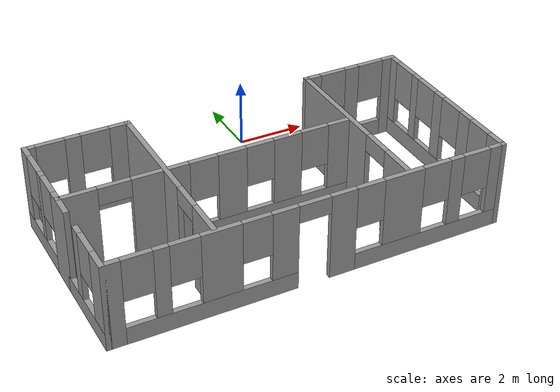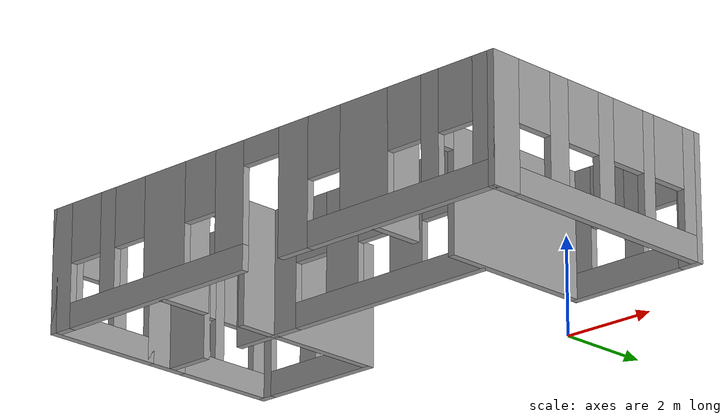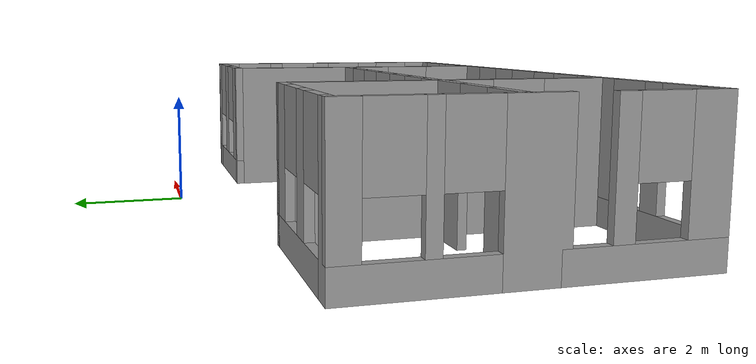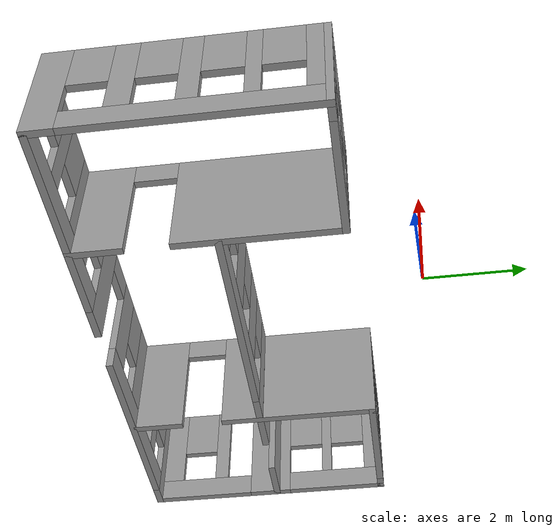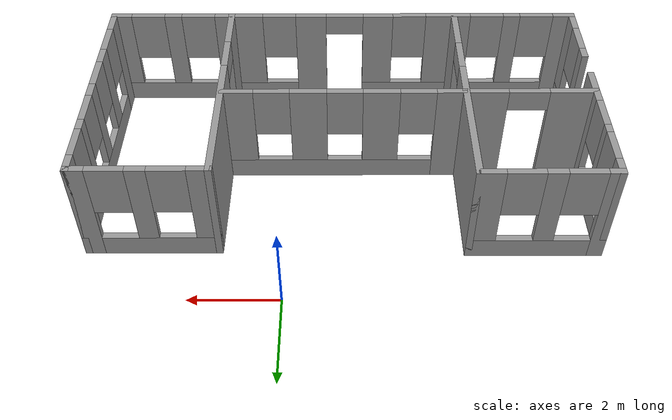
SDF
<?xml version='1.0'?>
<sdf version='1.6'>
  <model name='office_2'>
    <pose frame=''>-1.29 -3.995 0 0 -0 0</pose>
    <link name='Wall_0'>
      <pose frame=''>-5.55 1.175 0 0 -0 1.5708</pose>
      <visual name='Wall_0_Visual_0'>
        <pose frame=''>-1.13995 0 1.25 0 -0 0</pose>
        <geometry>
          <box>
            <size>0.970095 0.15 2.5</size>
          </box>
        </geometry>
        <material>
          <script>
            <uri>file://media/materials/scripts/gazebo.material</uri>
            <name>Gazebo/Grey</name>
          </script>
          <ambient>1 1 1 1</ambient>
        </material>
        <meta>
          <layer>0</layer>
        </meta>
      </visual>
      <collision name='Wall_0_Collision_0'>
        <geometry>
          <box>
            <size>0.970095 0.15 2.5</size>
          </box>
        </geometry>
        <pose frame=''>-1.13995 0 1.25 0 -0 0</pose>
      </collision>
      <visual name='Wall_0_Visual_1'>
        <pose frame=''>0.485048 0 0.25 0 -0 0</pose>
        <geometry>
          <box>
            <size>2.2799 0.15 0.5</size>
          </box>
        </geometry>
        <material>
          <script>
            <uri>file://media/materials/scripts/gazebo.material</uri>
            <name>Gazebo/Grey</name>
          </script>
          <ambient>1 1 1 1</ambient>
        </material>
        <meta>
          <layer>0</layer>
        </meta>
      </visual>
      <collision name='Wall_0_Collision_1'>
        <geometry>
          <box>
            <size>2.2799 0.15 0.5</size>
          </box>
        </geometry>
        <pose frame=''>0.485048 0 0.25 0 -0 0</pose>
      </collision>
      <visual name='Wall_0_Visual_2'>
        <pose frame=''>0.261163 0 1.5 0 -0 0</pose>
        <geometry>
          <box>
            <size>0.232136 0.15 2</size>
          </box>
        </geometry>
        <material>
          <script>
            <uri>file://media/materials/scripts/gazebo.material</uri>
            <name>Gazebo/Grey</name>
          </script>
          <ambient>1 1 1 1</ambient>
        </material>
        <meta>
          <layer>0</layer>
        </meta>
      </visual>
      <collision name='Wall_0_Collision_2'>
        <geometry>
          <box>
            <size>0.232136 0.15 2</size>
          </box>
        </geometry>
        <pose frame=''>0.261163 0 1.5 0 -0 0</pose>
      </collision>
      <visual name='Wall_0_Visual_3'>
        <pose frame=''>1.40112 0 1.5 0 -0 0</pose>
        <geometry>
          <box>
            <size>0.447769 0.15 2</size>
          </box>
        </geometry>
        <material>
          <script>
            <uri>file://media/materials/scripts/gazebo.material</uri>
            <name>Gazebo/Grey</name>
          </script>
          <ambient>1 1 1 1</ambient>
        </material>
        <meta>
          <layer>0</layer>
        </meta>
      </visual>
      <collision name='Wall_0_Collision_3'>
        <geometry>
          <box>
            <size>0.447769 0.15 2</size>
          </box>
        </geometry>
        <pose frame=''>1.40112 0 1.5 0 -0 0</pose>
      </collision>
      <visual name='Wall_0_Visual_4'>
        <pose frame=''>-0.254905 0 1.9 0 -0 0</pose>
        <geometry>
          <box>
            <size>0.8 0.15 1.2</size>
          </box>
        </geometry>
        <material>
          <script>
            <uri>file://media/materials/scripts/gazebo.material</uri>
            <name>Gazebo/Grey</name>
          </script>
          <ambient>1 1 1 1</ambient>
        </material>
        <meta>
          <layer>0</layer>
        </meta>
      </visual>
      <collision name='Wall_0_Collision_4'>
        <geometry>
          <box>
            <size>0.8 0.15 1.2</size>
          </box>
        </geometry>
        <pose frame=''>-0.254905 0 1.9 0 -0 0</pose>
      </collision>
      <visual name='Wall_0_Visual_5'>
        <pose frame=''>0.777231 0 1.9 0 -0 0</pose>
        <geometry>
          <box>
            <size>0.8 0.15 1.2</size>
          </box>
        </geometry>
        <material>
          <script>
            <uri>file://media/materials/scripts/gazebo.material</uri>
            <name>Gazebo/Grey</name>
          </script>
          <ambient>1 1 1 1</ambient>
        </material>
        <meta>
          <layer>0</layer>
        </meta>
      </visual>
      <collision name='Wall_0_Collision_5'>
        <geometry>
          <box>
            <size>0.8 0.15 1.2</size>
          </box>
        </geometry>
        <pose frame=''>0.777231 0 1.9 0 -0 0</pose>
      </collision>
    </link>
    <link name='Wall_13'>
      <pose frame=''>2.7 -0.05 0 0 0 -1.5708</pose>
      <visual name='Wall_13_Visual_0'>
        <pose frame=''>-1.03023 0 1.25 0 -0 0</pose>
        <geometry>
          <box>
            <size>3.43955 0.15 2.5</size>
          </box>
        </geometry>
        <material>
          <script>
            <uri>file://media/materials/scripts/gazebo.material</uri>
            <name>Gazebo/Grey</name>
          </script>
          <ambient>1 1 1 1</ambient>
        </material>
        <meta>
          <layer>0</layer>
        </meta>
      </visual>
      <collision name='Wall_13_Collision_0'>
        <geometry>
          <box>
            <size>3.43955 0.15 2.5</size>
          </box>
        </geometry>
        <pose frame=''>-1.03023 0 1.25 0 -0 0</pose>
      </collision>
      <visual name='Wall_13_Visual_1'>
        <pose frame=''>2.16977 0 1.25 0 -0 0</pose>
        <geometry>
          <box>
            <size>1.16045 0.15 2.5</size>
          </box>
        </geometry>
        <material>
          <script>
            <uri>file://media/materials/scripts/gazebo.material</uri>
            <name>Gazebo/Grey</name>
          </script>
          <ambient>1 1 1 1</ambient>
        </material>
        <meta>
          <layer>0</layer>
        </meta>
      </visual>
      <collision name='Wall_13_Collision_1'>
        <geometry>
          <box>
            <size>1.16045 0.15 2.5</size>
          </box>
        </geometry>
        <pose frame=''>2.16977 0 1.25 0 -0 0</pose>
      </collision>
      <visual name='Wall_13_Visual_2'>
        <pose frame=''>1.13955 0 2.25 0 -0 0</pose>
        <geometry>
          <box>
            <size>0.9 0.15 0.5</size>
          </box>
        </geometry>
        <material>
          <script>
            <uri>file://media/materials/scripts/gazebo.material</uri>
            <name>Gazebo/Grey</name>
          </script>
          <ambient>1 1 1 1</ambient>
        </material>
        <meta>
          <layer>0</layer>
        </meta>
      </visual>
      <collision name='Wall_13_Collision_2'>
        <geometry>
          <box>
            <size>0.9 0.15 0.5</size>
          </box>
        </geometry>
        <pose frame=''>1.13955 0 2.25 0 -0 0</pose>
      </collision>
    </link>
    <link name='Wall_15'>
      <pose frame=''>-4.125 2.725 0 0 -0 0</pose>
      <visual name='Wall_15_Visual_0'>
        <pose frame=''>-1.32788 0 1.25 0 -0 0</pose>
        <geometry>
          <box>
            <size>0.344242 0.15 2.5</size>
          </box>
        </geometry>
        <material>
          <script>
            <uri>file://media/materials/scripts/gazebo.material</uri>
            <name>Gazebo/Grey</name>
          </script>
          <ambient>1 1 1 1</ambient>
        </material>
        <meta>
          <layer>0</layer>
        </meta>
      </visual>
      <collision name='Wall_15_Collision_0'>
        <geometry>
          <box>
            <size>0.344242 0.15 2.5</size>
          </box>
        </geometry>
        <pose frame=''>-1.32788 0 1.25 0 -0 0</pose>
      </collision>
      <visual name='Wall_15_Visual_1'>
        <pose frame=''>0.172121 0 0.25 0 -0 0</pose>
        <geometry>
          <box>
            <size>2.65576 0.15 0.5</size>
          </box>
        </geometry>
        <material>
          <script>
            <uri>file://media/materials/scripts/gazebo.material</uri>
            <name>Gazebo/Grey</name>
          </script>
          <ambient>1 1 1 1</ambient>
        </material>
        <meta>
          <layer>0</layer>
        </meta>
      </visual>
      <collision name='Wall_15_Collision_1'>
        <geometry>
          <box>
            <size>2.65576 0.15 0.5</size>
          </box>
        </geometry>
        <pose frame=''>0.172121 0 0.25 0 -0 0</pose>
      </collision>
      <visual name='Wall_15_Visual_2'>
        <pose frame=''>-0.13761 0 1.5 0 -0 0</pose>
        <geometry>
          <box>
            <size>0.436295 0.15 2</size>
          </box>
        </geometry>
        <material>
          <script>
            <uri>file://media/materials/scripts/gazebo.material</uri>
            <name>Gazebo/Grey</name>
          </script>
          <ambient>1 1 1 1</ambient>
        </material>
        <meta>
          <layer>0</layer>
        </meta>
      </visual>
      <collision name='Wall_15_Collision_2'>
        <geometry>
          <box>
            <size>0.436295 0.15 2</size>
          </box>
        </geometry>
        <pose frame=''>-0.13761 0 1.5 0 -0 0</pose>
      </collision>
      <visual name='Wall_15_Visual_3'>
        <pose frame=''>1.19027 0 1.5 0 -0 0</pose>
        <geometry>
          <box>
            <size>0.619463 0.15 2</size>
          </box>
        </geometry>
        <material>
          <script>
            <uri>file://media/materials/scripts/gazebo.material</uri>
            <name>Gazebo/Grey</name>
          </script>
          <ambient>1 1 1 1</ambient>
        </material>
        <meta>
          <layer>0</layer>
        </meta>
      </visual>
      <collision name='Wall_15_Collision_3'>
        <geometry>
          <box>
            <size>0.619463 0.15 2</size>
          </box>
        </geometry>
        <pose frame=''>1.19027 0 1.5 0 -0 0</pose>
      </collision>
      <visual name='Wall_15_Visual_4'>
        <pose frame=''>-0.755758 0 1.9 0 -0 0</pose>
        <geometry>
          <box>
            <size>0.8 0.15 1.2</size>
          </box>
        </geometry>
        <material>
          <script>
            <uri>file://media/materials/scripts/gazebo.material</uri>
            <name>Gazebo/Grey</name>
          </script>
          <ambient>1 1 1 1</ambient>
        </material>
        <meta>
          <layer>0</layer>
        </meta>
      </visual>
      <collision name='Wall_15_Collision_4'>
        <geometry>
          <box>
            <size>0.8 0.15 1.2</size>
          </box>
        </geometry>
        <pose frame=''>-0.755758 0 1.9 0 -0 0</pose>
      </collision>
      <visual name='Wall_15_Visual_5'>
        <pose frame=''>0.480537 0 1.9 0 -0 0</pose>
        <geometry>
          <box>
            <size>0.8 0.15 1.2</size>
          </box>
        </geometry>
        <material>
          <script>
            <uri>file://media/materials/scripts/gazebo.material</uri>
            <name>Gazebo/Grey</name>
          </script>
          <ambient>1 1 1 1</ambient>
        </material>
        <meta>
          <layer>0</layer>
        </meta>
      </visual>
      <collision name='Wall_15_Collision_5'>
        <geometry>
          <box>
            <size>0.8 0.15 1.2</size>
          </box>
        </geometry>
        <pose frame=''>0.480537 0 1.9 0 -0 0</pose>
      </collision>
    </link>
    <link name='Wall_16'>
      <pose frame=''>-2.7 0.05 0 0 0 -1.5708</pose>
      <visual name='Wall_16_Visual_0'>
        <pose frame=''>-1.00858 0 1.25 0 -0 0</pose>
        <geometry>
          <box>
            <size>3.48284 0.15 2.5</size>
          </box>
        </geometry>
        <material>
          <script>
            <uri>file://media/materials/scripts/gazebo.material</uri>
            <name>Gazebo/Grey</name>
          </script>
          <ambient>1 1 1 1</ambient>
        </material>
        <meta>
          <layer>0</layer>
        </meta>
      </visual>
      <collision name='Wall_16_Collision_0'>
        <geometry>
          <box>
            <size>3.48284 0.15 2.5</size>
          </box>
        </geometry>
        <pose frame=''>-1.00858 0 1.25 0 -0 0</pose>
      </collision>
      <visual name='Wall_16_Visual_1'>
        <pose frame=''>2.19142 0 1.25 0 -0 0</pose>
        <geometry>
          <box>
            <size>1.11716 0.15 2.5</size>
          </box>
        </geometry>
        <material>
          <script>
            <uri>file://media/materials/scripts/gazebo.material</uri>
            <name>Gazebo/Grey</name>
          </script>
          <ambient>1 1 1 1</ambient>
        </material>
        <meta>
          <layer>0</layer>
        </meta>
      </visual>
      <collision name='Wall_16_Collision_1'>
        <geometry>
          <box>
            <size>1.11716 0.15 2.5</size>
          </box>
        </geometry>
        <pose frame=''>2.19142 0 1.25 0 -0 0</pose>
      </collision>
      <visual name='Wall_16_Visual_2'>
        <pose frame=''>1.18284 0 2.25 0 -0 0</pose>
        <geometry>
          <box>
            <size>0.9 0.15 0.5</size>
          </box>
        </geometry>
        <material>
          <script>
            <uri>file://media/materials/scripts/gazebo.material</uri>
            <name>Gazebo/Grey</name>
          </script>
          <ambient>1 1 1 1</ambient>
        </material>
        <meta>
          <layer>0</layer>
        </meta>
      </visual>
      <collision name='Wall_16_Collision_2'>
        <geometry>
          <box>
            <size>0.9 0.15 0.5</size>
          </box>
        </geometry>
        <pose frame=''>1.18284 0 2.25 0 -0 0</pose>
      </collision>
    </link>
    <link name='Wall_18'>
      <pose frame=''>-0.016722 0.194197 0 0 -0 0</pose>
      <visual name='Wall_18_Visual_0'>
        <pose frame=''>-2.39643 0 1.25 0 -0 0</pose>
        <geometry>
          <box>
            <size>0.707136 0.15 2.5</size>
          </box>
        </geometry>
        <material>
          <script>
            <uri>file://media/materials/scripts/gazebo.material</uri>
            <name>Gazebo/Grey</name>
          </script>
          <ambient>1 1 1 1</ambient>
        </material>
        <meta>
          <layer>0</layer>
        </meta>
      </visual>
      <collision name='Wall_18_Collision_0'>
        <geometry>
          <box>
            <size>0.707136 0.15 2.5</size>
          </box>
        </geometry>
        <pose frame=''>-2.39643 0 1.25 0 -0 0</pose>
      </collision>
      <visual name='Wall_18_Visual_1'>
        <pose frame=''>0.353568 0 0.25 0 -0 0</pose>
        <geometry>
          <box>
            <size>4.79286 0.15 0.5</size>
          </box>
        </geometry>
        <material>
          <script>
            <uri>file://media/materials/scripts/gazebo.material</uri>
            <name>Gazebo/Grey</name>
          </script>
          <ambient>1 1 1 1</ambient>
        </material>
        <meta>
          <layer>0</layer>
        </meta>
      </visual>
      <collision name='Wall_18_Collision_1'>
        <geometry>
          <box>
            <size>4.79286 0.15 0.5</size>
          </box>
        </geometry>
        <pose frame=''>0.353568 0 0.25 0 -0 0</pose>
      </collision>
      <visual name='Wall_18_Visual_2'>
        <pose frame=''>-0.8319 0 1.5 0 -0 0</pose>
        <geometry>
          <box>
            <size>0.821928 0.15 2</size>
          </box>
        </geometry>
        <material>
          <script>
            <uri>file://media/materials/scripts/gazebo.material</uri>
            <name>Gazebo/Grey</name>
          </script>
          <ambient>1 1 1 1</ambient>
        </material>
        <meta>
          <layer>0</layer>
        </meta>
      </visual>
      <collision name='Wall_18_Collision_2'>
        <geometry>
          <box>
            <size>0.821928 0.15 2</size>
          </box>
        </geometry>
        <pose frame=''>-0.8319 0 1.5 0 -0 0</pose>
      </collision>
      <visual name='Wall_18_Visual_3'>
        <pose frame=''>0.790028 0 1.5 0 -0 0</pose>
        <geometry>
          <box>
            <size>0.821928 0.15 2</size>
          </box>
        </geometry>
        <material>
          <script>
            <uri>file://media/materials/scripts/gazebo.material</uri>
            <name>Gazebo/Grey</name>
          </script>
          <ambient>1 1 1 1</ambient>
        </material>
        <meta>
          <layer>0</layer>
        </meta>
      </visual>
      <collision name='Wall_18_Collision_3'>
        <geometry>
          <box>
            <size>0.821928 0.15 2</size>
          </box>
        </geometry>
        <pose frame=''>0.790028 0 1.5 0 -0 0</pose>
      </collision>
      <visual name='Wall_18_Visual_4'>
        <pose frame=''>2.3755 0 1.5 0 -0 0</pose>
        <geometry>
          <box>
            <size>0.749008 0.15 2</size>
          </box>
        </geometry>
        <material>
          <script>
            <uri>file://media/materials/scripts/gazebo.material</uri>
            <name>Gazebo/Grey</name>
          </script>
          <ambient>1 1 1 1</ambient>
        </material>
        <meta>
          <layer>0</layer>
        </meta>
      </visual>
      <collision name='Wall_18_Collision_4'>
        <geometry>
          <box>
            <size>0.749008 0.15 2</size>
          </box>
        </geometry>
        <pose frame=''>2.3755 0 1.5 0 -0 0</pose>
      </collision>
      <visual name='Wall_18_Visual_5'>
        <pose frame=''>-1.64286 0 1.9 0 -0 0</pose>
        <geometry>
          <box>
            <size>0.8 0.15 1.2</size>
          </box>
        </geometry>
        <material>
          <script>
            <uri>file://media/materials/scripts/gazebo.material</uri>
            <name>Gazebo/Grey</name>
          </script>
          <ambient>1 1 1 1</ambient>
        </material>
        <meta>
          <layer>0</layer>
        </meta>
      </visual>
      <collision name='Wall_18_Collision_5'>
        <geometry>
          <box>
            <size>0.8 0.15 1.2</size>
          </box>
        </geometry>
        <pose frame=''>-1.64286 0 1.9 0 -0 0</pose>
      </collision>
      <visual name='Wall_18_Visual_6'>
        <pose frame=''>-0.020936 0 1.9 0 -0 0</pose>
        <geometry>
          <box>
            <size>0.8 0.15 1.2</size>
          </box>
        </geometry>
        <material>
          <script>
            <uri>file://media/materials/scripts/gazebo.material</uri>
            <name>Gazebo/Grey</name>
          </script>
          <ambient>1 1 1 1</ambient>
        </material>
        <meta>
          <layer>0</layer>
        </meta>
      </visual>
      <collision name='Wall_18_Collision_6'>
        <geometry>
          <box>
            <size>0.8 0.15 1.2</size>
          </box>
        </geometry>
        <pose frame=''>-0.020936 0 1.9 0 -0 0</pose>
      </collision>
      <visual name='Wall_18_Visual_7'>
        <pose frame=''>1.60099 0 1.9 0 -0 0</pose>
        <geometry>
          <box>
            <size>0.8 0.15 1.2</size>
          </box>
        </geometry>
        <material>
          <script>
            <uri>file://media/materials/scripts/gazebo.material</uri>
            <name>Gazebo/Grey</name>
          </script>
          <ambient>1 1 1 1</ambient>
        </material>
        <meta>
          <layer>0</layer>
        </meta>
      </visual>
      <collision name='Wall_18_Collision_7'>
        <geometry>
          <box>
            <size>0.8 0.15 1.2</size>
          </box>
        </geometry>
        <pose frame=''>1.60099 0 1.9 0 -0 0</pose>
      </collision>
    </link>
    <link name='Wall_2'>
      <pose frame=''>-5.55 -1.55 0 0 0 -1.5708</pose>
      <visual name='Wall_2_Visual_0'>
        <pose frame=''>0 0 0.25 0 -0 0</pose>
        <geometry>
          <box>
            <size>2.5 0.15 0.5</size>
          </box>
        </geometry>
        <material>
          <script>
            <uri>file://media/materials/scripts/gazebo.material</uri>
            <name>Gazebo/Grey</name>
          </script>
          <ambient>1 1 1 1</ambient>
        </material>
        <meta>
          <layer>0</layer>
        </meta>
      </visual>
      <collision name='Wall_2_Collision_0'>
        <geometry>
          <box>
            <size>2.5 0.15 0.5</size>
          </box>
        </geometry>
        <pose frame=''>0 0 0.25 0 -0 0</pose>
      </collision>
      <visual name='Wall_2_Visual_1'>
        <pose frame=''>-0.354783 0 1.5 0 -0 0</pose>
        <geometry>
          <box>
            <size>0.322873 0.15 2</size>
          </box>
        </geometry>
        <material>
          <script>
            <uri>file://media/materials/scripts/gazebo.material</uri>
            <name>Gazebo/Grey</name>
          </script>
          <ambient>1 1 1 1</ambient>
        </material>
        <meta>
          <layer>0</layer>
        </meta>
      </visual>
      <collision name='Wall_2_Collision_1'>
        <geometry>
          <box>
            <size>0.322873 0.15 2</size>
          </box>
        </geometry>
        <pose frame=''>-0.354783 0 1.5 0 -0 0</pose>
      </collision>
      <visual name='Wall_2_Visual_2'>
        <pose frame=''>0.928327 0 1.5 0 -0 0</pose>
        <geometry>
          <box>
            <size>0.643346 0.15 2</size>
          </box>
        </geometry>
        <material>
          <script>
            <uri>file://media/materials/scripts/gazebo.material</uri>
            <name>Gazebo/Grey</name>
          </script>
          <ambient>1 1 1 1</ambient>
        </material>
        <meta>
          <layer>0</layer>
        </meta>
      </visual>
      <collision name='Wall_2_Collision_2'>
        <geometry>
          <box>
            <size>0.643346 0.15 2</size>
          </box>
        </geometry>
        <pose frame=''>0.928327 0 1.5 0 -0 0</pose>
      </collision>
      <visual name='Wall_2_Visual_3'>
        <pose frame=''>0.206654 0 1.9 0 -0 0</pose>
        <geometry>
          <box>
            <size>0.8 0.15 1.2</size>
          </box>
        </geometry>
        <material>
          <script>
            <uri>file://media/materials/scripts/gazebo.material</uri>
            <name>Gazebo/Grey</name>
          </script>
          <ambient>1 1 1 1</ambient>
        </material>
        <meta>
          <layer>0</layer>
        </meta>
      </visual>
      <collision name='Wall_2_Collision_3'>
        <geometry>
          <box>
            <size>0.8 0.15 1.2</size>
          </box>
        </geometry>
        <pose frame=''>0.206654 0 1.9 0 -0 0</pose>
      </collision>
    </link>
    <link name='Wall_20'>
      <pose frame=''>-4.11672 0.194197 0 0 -0 0</pose>
      <visual name='Wall_20_Visual_0'>
        <pose frame=''>-0.960043 0 1.25 0 -0 0</pose>
        <geometry>
          <box>
            <size>1.07991 0.15 2.5</size>
          </box>
        </geometry>
        <material>
          <script>
            <uri>file://media/materials/scripts/gazebo.material</uri>
            <name>Gazebo/Grey</name>
          </script>
          <ambient>1 1 1 1</ambient>
        </material>
        <meta>
          <layer>0</layer>
        </meta>
      </visual>
      <collision name='Wall_20_Collision_0'>
        <geometry>
          <box>
            <size>1.07991 0.15 2.5</size>
          </box>
        </geometry>
        <pose frame=''>-0.960043 0 1.25 0 -0 0</pose>
      </collision>
      <visual name='Wall_20_Visual_1'>
        <pose frame=''>0.989957 0 1.25 0 -0 0</pose>
        <geometry>
          <box>
            <size>1.02008 0.15 2.5</size>
          </box>
        </geometry>
        <material>
          <script>
            <uri>file://media/materials/scripts/gazebo.material</uri>
            <name>Gazebo/Grey</name>
          </script>
          <ambient>1 1 1 1</ambient>
        </material>
        <meta>
          <layer>0</layer>
        </meta>
      </visual>
      <collision name='Wall_20_Collision_1'>
        <geometry>
          <box>
            <size>1.02008 0.15 2.5</size>
          </box>
        </geometry>
        <pose frame=''>0.989957 0 1.25 0 -0 0</pose>
      </collision>
      <visual name='Wall_20_Visual_2'>
        <pose frame=''>0.029915 0 2.25 0 -0 0</pose>
        <geometry>
          <box>
            <size>0.9 0.15 0.5</size>
          </box>
        </geometry>
        <material>
          <script>
            <uri>file://media/materials/scripts/gazebo.material</uri>
            <name>Gazebo/Grey</name>
          </script>
          <ambient>1 1 1 1</ambient>
        </material>
        <meta>
          <layer>0</layer>
        </meta>
      </visual>
      <collision name='Wall_20_Collision_2'>
        <geometry>
          <box>
            <size>0.9 0.15 0.5</size>
          </box>
        </geometry>
        <pose frame=''>0.029915 0 2.25 0 -0 0</pose>
      </collision>
    </link>
    <link name='Wall_3'>
      <pose frame=''>0 -2.725 0 0 -0 0</pose>
      <visual name='Wall_3_Visual_0'>
        <pose frame=''>-5.36214 0 1.25 0 -0 0</pose>
        <geometry>
          <box>
            <size>0.525716 0.15 2.5</size>
          </box>
        </geometry>
        <material>
          <script>
            <uri>file://media/materials/scripts/gazebo.material</uri>
            <name>Gazebo/Grey</name>
          </script>
          <ambient>1 1 1 1</ambient>
        </material>
        <meta>
          <layer>0</layer>
        </meta>
      </visual>
      <collision name='Wall_3_Collision_0'>
        <geometry>
          <box>
            <size>0.525716 0.15 2.5</size>
          </box>
        </geometry>
        <pose frame=''>-5.36214 0 1.25 0 -0 0</pose>
      </collision>
      <visual name='Wall_3_Visual_1'>
        <pose frame=''>0.781293 0 1.25 0 -0 0</pose>
        <geometry>
          <box>
            <size>0.737902 0.15 2.5</size>
          </box>
        </geometry>
        <material>
          <script>
            <uri>file://media/materials/scripts/gazebo.material</uri>
            <name>Gazebo/Grey</name>
          </script>
          <ambient>1 1 1 1</ambient>
        </material>
        <meta>
          <layer>0</layer>
        </meta>
      </visual>
      <collision name='Wall_3_Collision_1'>
        <geometry>
          <box>
            <size>0.737902 0.15 2.5</size>
          </box>
        </geometry>
        <pose frame=''>0.781293 0 1.25 0 -0 0</pose>
      </collision>
      <visual name='Wall_3_Visual_2'>
        <pose frame=''>-2.79347 0 0.25 0 -0 0</pose>
        <geometry>
          <box>
            <size>4.61163 0.15 0.5</size>
          </box>
        </geometry>
        <material>
          <script>
            <uri>file://media/materials/scripts/gazebo.material</uri>
            <name>Gazebo/Grey</name>
          </script>
          <ambient>1 1 1 1</ambient>
        </material>
        <meta>
          <layer>0</layer>
        </meta>
      </visual>
      <collision name='Wall_3_Collision_2'>
        <geometry>
          <box>
            <size>4.61163 0.15 0.5</size>
          </box>
        </geometry>
        <pose frame=''>-2.79347 0 0.25 0 -0 0</pose>
      </collision>
      <visual name='Wall_3_Visual_3'>
        <pose frame=''>3.38762 0 0.25 0 -0 0</pose>
        <geometry>
          <box>
            <size>4.47476 0.15 0.5</size>
          </box>
        </geometry>
        <material>
          <script>
            <uri>file://media/materials/scripts/gazebo.material</uri>
            <name>Gazebo/Grey</name>
          </script>
          <ambient>1 1 1 1</ambient>
        </material>
        <meta>
          <layer>0</layer>
        </meta>
      </visual>
      <collision name='Wall_3_Collision_3'>
        <geometry>
          <box>
            <size>4.47476 0.15 0.5</size>
          </box>
        </geometry>
        <pose frame=''>3.38762 0 0.25 0 -0 0</pose>
      </collision>
      <visual name='Wall_3_Visual_4'>
        <pose frame=''>-4.09815 0 1.5 0 -0 0</pose>
        <geometry>
          <box>
            <size>0.402269 0.15 2</size>
          </box>
        </geometry>
        <material>
          <script>
            <uri>file://media/materials/scripts/gazebo.material</uri>
            <name>Gazebo/Grey</name>
          </script>
          <ambient>1 1 1 1</ambient>
        </material>
        <meta>
          <layer>0</layer>
        </meta>
      </visual>
      <collision name='Wall_3_Collision_4'>
        <geometry>
          <box>
            <size>0.402269 0.15 2</size>
          </box>
        </geometry>
        <pose frame=''>-4.09815 0 1.5 0 -0 0</pose>
      </collision>
      <visual name='Wall_3_Visual_5'>
        <pose frame=''>-2.55562 0 1.5 0 -0 0</pose>
        <geometry>
          <box>
            <size>1.0828 0.15 2</size>
          </box>
        </geometry>
        <material>
          <script>
            <uri>file://media/materials/scripts/gazebo.material</uri>
            <name>Gazebo/Grey</name>
          </script>
          <ambient>1 1 1 1</ambient>
        </material>
        <meta>
          <layer>0</layer>
        </meta>
      </visual>
      <collision name='Wall_3_Collision_5'>
        <geometry>
          <box>
            <size>1.0828 0.15 2</size>
          </box>
        </geometry>
        <pose frame=''>-2.55562 0 1.5 0 -0 0</pose>
      </collision>
      <visual name='Wall_3_Visual_6'>
        <pose frame=''>-0.850938 0 1.5 0 -0 0</pose>
        <geometry>
          <box>
            <size>0.72656 0.15 2</size>
          </box>
        </geometry>
        <material>
          <script>
            <uri>file://media/materials/scripts/gazebo.material</uri>
            <name>Gazebo/Grey</name>
          </script>
          <ambient>1 1 1 1</ambient>
        </material>
        <meta>
          <layer>0</layer>
        </meta>
      </visual>
      <collision name='Wall_3_Collision_6'>
        <geometry>
          <box>
            <size>0.72656 0.15 2</size>
          </box>
        </geometry>
        <pose frame=''>-0.850938 0 1.5 0 -0 0</pose>
      </collision>
      <visual name='Wall_3_Visual_7'>
        <pose frame=''>-0.850938 0 1.5 0 -0 0</pose>
        <geometry>
          <box>
            <size>0.72656 0.15 2</size>
          </box>
        </geometry>
        <material>
          <script>
            <uri>file://media/materials/scripts/gazebo.material</uri>
            <name>Gazebo/Grey</name>
          </script>
          <ambient>1 1 1 1</ambient>
        </material>
        <meta>
          <layer>0</layer>
        </meta>
      </visual>
      <collision name='Wall_3_Collision_7'>
        <geometry>
          <box>
            <size>0.72656 0.15 2</size>
          </box>
        </geometry>
        <pose frame=''>-0.850938 0 1.5 0 -0 0</pose>
      </collision>
      <visual name='Wall_3_Visual_8'>
        <pose frame=''>2.53134 0 1.5 0 -0 0</pose>
        <geometry>
          <box>
            <size>1.16219 0.15 2</size>
          </box>
        </geometry>
        <material>
          <script>
            <uri>file://media/materials/scripts/gazebo.material</uri>
            <name>Gazebo/Grey</name>
          </script>
          <ambient>1 1 1 1</ambient>
        </material>
        <meta>
          <layer>0</layer>
        </meta>
      </visual>
      <collision name='Wall_3_Collision_8'>
        <geometry>
          <box>
            <size>1.16219 0.15 2</size>
          </box>
        </geometry>
        <pose frame=''>2.53134 0 1.5 0 -0 0</pose>
      </collision>
      <visual name='Wall_3_Visual_9'>
        <pose frame=''>4.11924 0 1.5 0 -0 0</pose>
        <geometry>
          <box>
            <size>0.41361 0.15 2</size>
          </box>
        </geometry>
        <material>
          <script>
            <uri>file://media/materials/scripts/gazebo.material</uri>
            <name>Gazebo/Grey</name>
          </script>
          <ambient>1 1 1 1</ambient>
        </material>
        <meta>
          <layer>0</layer>
        </meta>
      </visual>
      <collision name='Wall_3_Collision_9'>
        <geometry>
          <box>
            <size>0.41361 0.15 2</size>
          </box>
        </geometry>
        <pose frame=''>4.11924 0 1.5 0 -0 0</pose>
      </collision>
      <visual name='Wall_3_Visual_10'>
        <pose frame=''>5.37552 0 1.5 0 -0 0</pose>
        <geometry>
          <box>
            <size>0.498953 0.15 2</size>
          </box>
        </geometry>
        <material>
          <script>
            <uri>file://media/materials/scripts/gazebo.material</uri>
            <name>Gazebo/Grey</name>
          </script>
          <ambient>1 1 1 1</ambient>
        </material>
        <meta>
          <layer>0</layer>
        </meta>
      </visual>
      <collision name='Wall_3_Collision_10'>
        <geometry>
          <box>
            <size>0.498953 0.15 2</size>
          </box>
        </geometry>
        <pose frame=''>5.37552 0 1.5 0 -0 0</pose>
      </collision>
      <visual name='Wall_3_Visual_11'>
        <pose frame=''>-4.69928 0 1.9 0 -0 0</pose>
        <geometry>
          <box>
            <size>0.8 0.15 1.2</size>
          </box>
        </geometry>
        <material>
          <script>
            <uri>file://media/materials/scripts/gazebo.material</uri>
            <name>Gazebo/Grey</name>
          </script>
          <ambient>1 1 1 1</ambient>
        </material>
        <meta>
          <layer>0</layer>
        </meta>
      </visual>
      <collision name='Wall_3_Collision_11'>
        <geometry>
          <box>
            <size>0.8 0.15 1.2</size>
          </box>
        </geometry>
        <pose frame=''>-4.69928 0 1.9 0 -0 0</pose>
      </collision>
      <visual name='Wall_3_Visual_12'>
        <pose frame=''>1.55024 0 1.9 0 -0 0</pose>
        <geometry>
          <box>
            <size>0.8 0.15 1.2</size>
          </box>
        </geometry>
        <material>
          <script>
            <uri>file://media/materials/scripts/gazebo.material</uri>
            <name>Gazebo/Grey</name>
          </script>
          <ambient>1 1 1 1</ambient>
        </material>
        <meta>
          <layer>0</layer>
        </meta>
      </visual>
      <collision name='Wall_3_Collision_12'>
        <geometry>
          <box>
            <size>0.8 0.15 1.2</size>
          </box>
        </geometry>
        <pose frame=''>1.55024 0 1.9 0 -0 0</pose>
      </collision>
      <visual name='Wall_3_Visual_13'>
        <pose frame=''>-3.49702 0 1.9 0 -0 0</pose>
        <geometry>
          <box>
            <size>0.8 0.15 1.2</size>
          </box>
        </geometry>
        <material>
          <script>
            <uri>file://media/materials/scripts/gazebo.material</uri>
            <name>Gazebo/Grey</name>
          </script>
          <ambient>1 1 1 1</ambient>
        </material>
        <meta>
          <layer>0</layer>
        </meta>
      </visual>
      <collision name='Wall_3_Collision_13'>
        <geometry>
          <box>
            <size>0.8 0.15 1.2</size>
          </box>
        </geometry>
        <pose frame=''>-3.49702 0 1.9 0 -0 0</pose>
      </collision>
      <visual name='Wall_3_Visual_14'>
        <pose frame=''>-1.61422 0 1.9 0 -0 0</pose>
        <geometry>
          <box>
            <size>0.8 0.15 1.2</size>
          </box>
        </geometry>
        <material>
          <script>
            <uri>file://media/materials/scripts/gazebo.material</uri>
            <name>Gazebo/Grey</name>
          </script>
          <ambient>1 1 1 1</ambient>
        </material>
        <meta>
          <layer>0</layer>
        </meta>
      </visual>
      <collision name='Wall_3_Collision_14'>
        <geometry>
          <box>
            <size>0.8 0.15 1.2</size>
          </box>
        </geometry>
        <pose frame=''>-1.61422 0 1.9 0 -0 0</pose>
      </collision>
      <visual name='Wall_3_Visual_15'>
        <pose frame=''>3.51244 0 1.9 0 -0 0</pose>
        <geometry>
          <box>
            <size>0.8 0.15 1.2</size>
          </box>
        </geometry>
        <material>
          <script>
            <uri>file://media/materials/scripts/gazebo.material</uri>
            <name>Gazebo/Grey</name>
          </script>
          <ambient>1 1 1 1</ambient>
        </material>
        <meta>
          <layer>0</layer>
        </meta>
      </visual>
      <collision name='Wall_3_Collision_15'>
        <geometry>
          <box>
            <size>0.8 0.15 1.2</size>
          </box>
        </geometry>
        <pose frame=''>3.51244 0 1.9 0 -0 0</pose>
      </collision>
      <visual name='Wall_3_Visual_16'>
        <pose frame=''>4.72605 0 1.9 0 -0 0</pose>
        <geometry>
          <box>
            <size>0.8 0.15 1.2</size>
          </box>
        </geometry>
        <material>
          <script>
            <uri>file://media/materials/scripts/gazebo.material</uri>
            <name>Gazebo/Grey</name>
          </script>
          <ambient>1 1 1 1</ambient>
        </material>
        <meta>
          <layer>0</layer>
        </meta>
      </visual>
      <collision name='Wall_3_Collision_16'>
        <geometry>
          <box>
            <size>0.8 0.15 1.2</size>
          </box>
        </geometry>
        <pose frame=''>4.72605 0 1.9 0 -0 0</pose>
      </collision>
      <visual name='Wall_3_Visual_17'>
        <pose frame=''>-0.037658 0 2.25 0 -0 0</pose>
        <geometry>
          <box>
            <size>0.9 0.15 0.5</size>
          </box>
        </geometry>
        <material>
          <script>
            <uri>file://media/materials/scripts/gazebo.material</uri>
            <name>Gazebo/Grey</name>
          </script>
          <ambient>1 1 1 1</ambient>
        </material>
        <meta>
          <layer>0</layer>
        </meta>
      </visual>
      <collision name='Wall_3_Collision_17'>
        <geometry>
          <box>
            <size>0.9 0.15 0.5</size>
          </box>
        </geometry>
        <pose frame=''>-0.037658 0 2.25 0 -0 0</pose>
      </collision>
      <visual name='Wall_3_Visual_18'>
        <pose frame=''>-0.037658 0 2.25 0 -0 0</pose>
        <geometry>
          <box>
            <size>0.9 0.15 0.5</size>
          </box>
        </geometry>
        <material>
          <script>
            <uri>file://media/materials/scripts/gazebo.material</uri>
            <name>Gazebo/Grey</name>
          </script>
          <ambient>1 1 1 1</ambient>
        </material>
        <meta>
          <layer>0</layer>
        </meta>
      </visual>
      <collision name='Wall_3_Collision_18'>
        <geometry>
          <box>
            <size>0.9 0.15 0.5</size>
          </box>
        </geometry>
        <pose frame=''>-0.037658 0 2.25 0 -0 0</pose>
      </collision>
    </link>
    <link name='Wall_4'>
      <pose frame=''>5.55 -0.05 0 0 -0 1.5708</pose>
      <visual name='Wall_4_Visual_0'>
        <pose frame=''>-2.42833 0 1.25 0 -0 0</pose>
        <geometry>
          <box>
            <size>0.643346 0.15 2.5</size>
          </box>
        </geometry>
        <material>
          <script>
            <uri>file://media/materials/scripts/gazebo.material</uri>
            <name>Gazebo/Grey</name>
          </script>
          <ambient>1 1 1 1</ambient>
        </material>
        <meta>
          <layer>0</layer>
        </meta>
      </visual>
      <collision name='Wall_4_Collision_0'>
        <geometry>
          <box>
            <size>0.643346 0.15 2.5</size>
          </box>
        </geometry>
        <pose frame=''>-2.42833 0 1.25 0 -0 0</pose>
      </collision>
      <visual name='Wall_4_Visual_1'>
        <pose frame=''>0.321673 0 0.25 0 -0 0</pose>
        <geometry>
          <box>
            <size>4.85665 0.15 0.5</size>
          </box>
        </geometry>
        <material>
          <script>
            <uri>file://media/materials/scripts/gazebo.material</uri>
            <name>Gazebo/Grey</name>
          </script>
          <ambient>1 1 1 1</ambient>
        </material>
        <meta>
          <layer>0</layer>
        </meta>
      </visual>
      <collision name='Wall_4_Collision_1'>
        <geometry>
          <box>
            <size>4.85665 0.15 0.5</size>
          </box>
        </geometry>
        <pose frame=''>0.321673 0 0.25 0 -0 0</pose>
      </collision>
      <visual name='Wall_4_Visual_2'>
        <pose frame=''>-1.06582 0 1.5 0 -0 0</pose>
        <geometry>
          <box>
            <size>0.481663 0.15 2</size>
          </box>
        </geometry>
        <material>
          <script>
            <uri>file://media/materials/scripts/gazebo.material</uri>
            <name>Gazebo/Grey</name>
          </script>
          <ambient>1 1 1 1</ambient>
        </material>
        <meta>
          <layer>0</layer>
        </meta>
      </visual>
      <collision name='Wall_4_Collision_2'>
        <geometry>
          <box>
            <size>0.481663 0.15 2</size>
          </box>
        </geometry>
        <pose frame=''>-1.06582 0 1.5 0 -0 0</pose>
      </collision>
      <visual name='Wall_4_Visual_3'>
        <pose frame=''>0.176144 0 1.5 0 -0 0</pose>
        <geometry>
          <box>
            <size>0.402269 0.15 2</size>
          </box>
        </geometry>
        <material>
          <script>
            <uri>file://media/materials/scripts/gazebo.material</uri>
            <name>Gazebo/Grey</name>
          </script>
          <ambient>1 1 1 1</ambient>
        </material>
        <meta>
          <layer>0</layer>
        </meta>
      </visual>
      <collision name='Wall_4_Collision_3'>
        <geometry>
          <box>
            <size>0.402269 0.15 2</size>
          </box>
        </geometry>
        <pose frame=''>0.176144 0 1.5 0 -0 0</pose>
      </collision>
      <visual name='Wall_4_Visual_4'>
        <pose frame=''>1.32737 0 1.5 0 -0 0</pose>
        <geometry>
          <box>
            <size>0.300189 0.15 2</size>
          </box>
        </geometry>
        <material>
          <script>
            <uri>file://media/materials/scripts/gazebo.material</uri>
            <name>Gazebo/Grey</name>
          </script>
          <ambient>1 1 1 1</ambient>
        </material>
        <meta>
          <layer>0</layer>
        </meta>
      </visual>
      <collision name='Wall_4_Collision_4'>
        <geometry>
          <box>
            <size>0.300189 0.15 2</size>
          </box>
        </geometry>
        <pose frame=''>1.32737 0 1.5 0 -0 0</pose>
      </collision>
      <visual name='Wall_4_Visual_5'>
        <pose frame=''>2.51373 0 1.5 0 -0 0</pose>
        <geometry>
          <box>
            <size>0.472532 0.15 2</size>
          </box>
        </geometry>
        <material>
          <script>
            <uri>file://media/materials/scripts/gazebo.material</uri>
            <name>Gazebo/Grey</name>
          </script>
          <ambient>1 1 1 1</ambient>
        </material>
        <meta>
          <layer>0</layer>
        </meta>
      </visual>
      <collision name='Wall_4_Collision_5'>
        <geometry>
          <box>
            <size>0.472532 0.15 2</size>
          </box>
        </geometry>
        <pose frame=''>2.51373 0 1.5 0 -0 0</pose>
      </collision>
      <visual name='Wall_4_Visual_6'>
        <pose frame=''>-1.70665 0 1.9 0 -0 0</pose>
        <geometry>
          <box>
            <size>0.8 0.15 1.2</size>
          </box>
        </geometry>
        <material>
          <script>
            <uri>file://media/materials/scripts/gazebo.material</uri>
            <name>Gazebo/Grey</name>
          </script>
          <ambient>1 1 1 1</ambient>
        </material>
        <meta>
          <layer>0</layer>
        </meta>
      </visual>
      <collision name='Wall_4_Collision_6'>
        <geometry>
          <box>
            <size>0.8 0.15 1.2</size>
          </box>
        </geometry>
        <pose frame=''>-1.70665 0 1.9 0 -0 0</pose>
      </collision>
      <visual name='Wall_4_Visual_7'>
        <pose frame=''>-0.42499 0 1.9 0 -0 0</pose>
        <geometry>
          <box>
            <size>0.8 0.15 1.2</size>
          </box>
        </geometry>
        <material>
          <script>
            <uri>file://media/materials/scripts/gazebo.material</uri>
            <name>Gazebo/Grey</name>
          </script>
          <ambient>1 1 1 1</ambient>
        </material>
        <meta>
          <layer>0</layer>
        </meta>
      </visual>
      <collision name='Wall_4_Collision_7'>
        <geometry>
          <box>
            <size>0.8 0.15 1.2</size>
          </box>
        </geometry>
        <pose frame=''>-0.42499 0 1.9 0 -0 0</pose>
      </collision>
      <visual name='Wall_4_Visual_8'>
        <pose frame=''>0.777278 0 1.9 0 -0 0</pose>
        <geometry>
          <box>
            <size>0.8 0.15 1.2</size>
          </box>
        </geometry>
        <material>
          <script>
            <uri>file://media/materials/scripts/gazebo.material</uri>
            <name>Gazebo/Grey</name>
          </script>
          <ambient>1 1 1 1</ambient>
        </material>
        <meta>
          <layer>0</layer>
        </meta>
      </visual>
      <collision name='Wall_4_Collision_8'>
        <geometry>
          <box>
            <size>0.8 0.15 1.2</size>
          </box>
        </geometry>
        <pose frame=''>0.777278 0 1.9 0 -0 0</pose>
      </collision>
      <visual name='Wall_4_Visual_9'>
        <pose frame=''>1.87747 0 1.9 0 -0 0</pose>
        <geometry>
          <box>
            <size>0.8 0.15 1.2</size>
          </box>
        </geometry>
        <material>
          <script>
            <uri>file://media/materials/scripts/gazebo.material</uri>
            <name>Gazebo/Grey</name>
          </script>
          <ambient>1 1 1 1</ambient>
        </material>
        <meta>
          <layer>0</layer>
        </meta>
      </visual>
      <collision name='Wall_4_Collision_9'>
        <geometry>
          <box>
            <size>0.8 0.15 1.2</size>
          </box>
        </geometry>
        <pose frame=''>1.87747 0 1.9 0 -0 0</pose>
      </collision>
    </link>
    <link name='Wall_5'>
      <pose frame=''>4.125 2.625 0 0 -0 3.14159</pose>
      <visual name='Wall_5_Visual_0'>
        <pose frame=''>-1.27888 0 1.25 0 -0 0</pose>
        <geometry>
          <box>
            <size>0.442242 0.15 2.5</size>
          </box>
        </geometry>
        <material>
          <script>
            <uri>file://media/materials/scripts/gazebo.material</uri>
            <name>Gazebo/Grey</name>
          </script>
          <ambient>1 1 1 1</ambient>
        </material>
        <meta>
          <layer>0</layer>
        </meta>
      </visual>
      <collision name='Wall_5_Collision_0'>
        <geometry>
          <box>
            <size>0.442242 0.15 2.5</size>
          </box>
        </geometry>
        <pose frame=''>-1.27888 0 1.25 0 -0 0</pose>
      </collision>
      <visual name='Wall_5_Visual_1'>
        <pose frame=''>0.221121 0 0.25 0 -0 0</pose>
        <geometry>
          <box>
            <size>2.55776 0.15 0.5</size>
          </box>
        </geometry>
        <material>
          <script>
            <uri>file://media/materials/scripts/gazebo.material</uri>
            <name>Gazebo/Grey</name>
          </script>
          <ambient>1 1 1 1</ambient>
        </material>
        <meta>
          <layer>0</layer>
        </meta>
      </visual>
      <collision name='Wall_5_Collision_1'>
        <geometry>
          <box>
            <size>2.55776 0.15 0.5</size>
          </box>
        </geometry>
        <pose frame=''>0.221121 0 0.25 0 -0 0</pose>
      </collision>
      <visual name='Wall_5_Visual_2'>
        <pose frame=''>-0.039611 0 1.5 0 -0 0</pose>
        <geometry>
          <box>
            <size>0.436295 0.15 2</size>
          </box>
        </geometry>
        <material>
          <script>
            <uri>file://media/materials/scripts/gazebo.material</uri>
            <name>Gazebo/Grey</name>
          </script>
          <ambient>1 1 1 1</ambient>
        </material>
        <meta>
          <layer>0</layer>
        </meta>
      </visual>
      <collision name='Wall_5_Collision_2'>
        <geometry>
          <box>
            <size>0.436295 0.15 2</size>
          </box>
        </geometry>
        <pose frame=''>-0.039611 0 1.5 0 -0 0</pose>
      </collision>
      <visual name='Wall_5_Visual_3'>
        <pose frame=''>1.23927 0 1.5 0 -0 0</pose>
        <geometry>
          <box>
            <size>0.521463 0.15 2</size>
          </box>
        </geometry>
        <material>
          <script>
            <uri>file://media/materials/scripts/gazebo.material</uri>
            <name>Gazebo/Grey</name>
          </script>
          <ambient>1 1 1 1</ambient>
        </material>
        <meta>
          <layer>0</layer>
        </meta>
      </visual>
      <collision name='Wall_5_Collision_3'>
        <geometry>
          <box>
            <size>0.521463 0.15 2</size>
          </box>
        </geometry>
        <pose frame=''>1.23927 0 1.5 0 -0 0</pose>
      </collision>
      <visual name='Wall_5_Visual_4'>
        <pose frame=''>-0.657758 0 1.9 0 -0 0</pose>
        <geometry>
          <box>
            <size>0.8 0.15 1.2</size>
          </box>
        </geometry>
        <material>
          <script>
            <uri>file://media/materials/scripts/gazebo.material</uri>
            <name>Gazebo/Grey</name>
          </script>
          <ambient>1 1 1 1</ambient>
        </material>
        <meta>
          <layer>0</layer>
        </meta>
      </visual>
      <collision name='Wall_5_Collision_4'>
        <geometry>
          <box>
            <size>0.8 0.15 1.2</size>
          </box>
        </geometry>
        <pose frame=''>-0.657758 0 1.9 0 -0 0</pose>
      </collision>
      <visual name='Wall_5_Visual_5'>
        <pose frame=''>0.578537 0 1.9 0 -0 0</pose>
        <geometry>
          <box>
            <size>0.8 0.15 1.2</size>
          </box>
        </geometry>
        <material>
          <script>
            <uri>file://media/materials/scripts/gazebo.material</uri>
            <name>Gazebo/Grey</name>
          </script>
          <ambient>1 1 1 1</ambient>
        </material>
        <meta>
          <layer>0</layer>
        </meta>
      </visual>
      <collision name='Wall_5_Collision_5'>
        <geometry>
          <box>
            <size>0.8 0.15 1.2</size>
          </box>
        </geometry>
        <pose frame=''>0.578537 0 1.9 0 -0 0</pose>
      </collision>
    </link>
    <static>1</static>
  </model>
</sdf>
